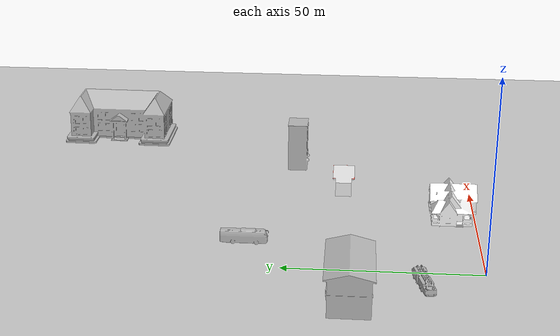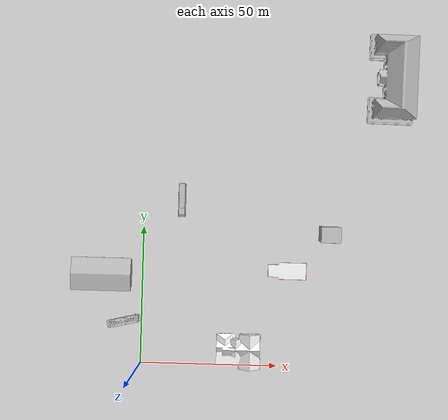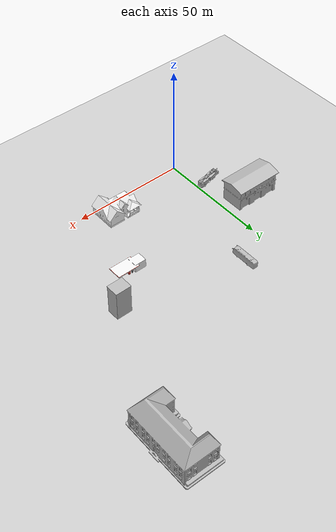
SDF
<sdf version="1.7">
 <world name="default">
  <light name="sun" type="directional">
   <pose>0 0 10 0 -0 0</pose>
   <diffuse>0.8 0.8 0.8 1</diffuse>
   <specular>0.2 0.2 0.2 1</specular>
   <attenuation>
    <range>1000</range>
    <constant>0.9</constant>
    <linear>0.01</linear>
    <quadratic>0.001</quadratic>
   </attenuation>
   <direction>-0.5 0.1 -0.9</direction>
   <spot><inner_angle>0</inner_angle><outer_angle>0</outer_angle><falloff>0</falloff></spot>
  </light>
  <model name="ground_plane">
   <static>1</static>
   <link name="link">
    <collision name="collision">
     <geometry><plane><normal>0 0 1</normal><size>500 500</size></plane></geometry>
     <surface>
      <contact><collide_bitmask>65535</collide_bitmask></contact>
      <friction><ode><mu>100</mu><mu2>50</mu2></ode></friction>
     </surface>
    </collision>
    <visual name="visual">
     <cast_shadows>0</cast_shadows>
     <geometry><plane><normal>0 0 1</normal><size>500 500</size></plane></geometry>
     <material>
      <script><uri>file://media/materials/scripts/gazebo.material</uri><name>Gazebo/Grey</name></script>
     </material>
    </visual>
   </link>
  </model>
  <gravity>0 0 -9.8</gravity>
  <magnetic_field>6e-06 2.3e-05 -4.2e-05</magnetic_field>
  <atmosphere type="adiabatic"/>
  <physics type="ode">
   <max_step_size>0.001</max_step_size>
   <real_time_factor>1</real_time_factor>
   <real_time_update_rate>1000</real_time_update_rate>
  </physics>
  <scene><ambient>0.4 0.4 0.4 1</ambient><background>0.7 0.7 0.7 1</background><shadows>1</shadows></scene>
  <spherical_coordinates>
   <surface_model>EARTH_WGS84</surface_model>
   <latitude_deg>0</latitude_deg>
   <longitude_deg>0</longitude_deg>
   <elevation>0</elevation>
   <heading_deg>0</heading_deg>
  </spherical_coordinates>
  <model name="fire_truck">
   <static>1</static>
   <link name="link">
    <collision name="collision">
     <geometry>
      <mesh><scale>0.1 0.1 0.1</scale><uri>model://fire_truck/meshes/fire_truck.obj</uri></mesh>
     </geometry>
    </collision>
    <visual name="visual">
     <geometry>
      <mesh><scale>0.1 0.1 0.1</scale><uri>model://fire_truck/meshes/fire_truck.obj</uri></mesh>
     </geometry>
    </visual>
   </link>
   <pose>-6.16311 15.2931 0 0 0 -1.34051</pose>
  </model>
  <model name="House 1">
   <static>1</static>
   <link name="link">
    <collision name="collision">
     <geometry><mesh><uri>model://house_1/meshes/house_1.dae</uri><scale>1.5 1.5 1.5</scale></mesh></geometry>
    </collision>
    <visual name="visual">
     <geometry><mesh><uri>model://house_1/meshes/house_1.dae</uri><scale>1.5 1.5 1.5</scale></mesh></geometry>
     <material>
      <script>
       <uri>model://house_1/materials/scripts</uri>
       <uri>model://house_1/materials/textures</uri>
       <name>House_1/Diffuse</name>
      </script>
      <shader type="normal_map_tangent_space"><normal_map>House_1_Normal.png</normal_map></shader>
     </material>
    </visual>
   </link>
   <pose>36.0516 5.96955 0 0 -0 0</pose>
  </model>
  <model name="school">
   <static>1</static>
   <link name="link">
    <collision name="collision">
     <geometry><mesh><uri>model://school/meshes/school.dae</uri></mesh></geometry>
    </collision>
    <visual name="visual"><geometry><mesh><uri>model://school/meshes/school.dae</uri></mesh></geometry></visual>
   </link>
   <pose>92.1629 106.486 0 0 0 -1.58531</pose>
  </model>
  <model name="bus">
   <static>1</static>
   <link name="link">
    <collision name="collision">
     <geometry><mesh><scale>0.01 0.01 0.01</scale><uri>model://bus/meshes/bus.obj</uri></mesh></geometry>
    </collision>
    <visual name="visual">
     <geometry><mesh><scale>0.01 0.01 0.01</scale><uri>model://bus/meshes/bus.obj</uri></mesh></geometry>
    </visual>
   </link>
   <pose>13.863 60.111 0 0 -0 0</pose>
  </model>
  <model name="law_office">
   <static>1</static>
   <link name="link">
    <collision name="collision">
     <pose>0 0 6.96244 0 -0 0</pose>
     <geometry><box><size>6.84401 5.43165 13.9249</size></box></geometry>
    </collision>
    <visual name="visual">
     <geometry><mesh><uri>model://law_office/meshes/law_office.dae</uri></mesh></geometry>
    </visual>
   </link>
   <pose>67.8145 49.1913 0 0 -0 0</pose>
  </model>
  <model name="Gas Station">
   <static>1</static>
   <link name="link">
    <collision name="collision">
     <geometry><mesh><uri>model://gas_station/meshes/gas_station.dae</uri></mesh></geometry>
    </collision>
    <visual name="visual">
     <geometry><mesh><uri>model://gas_station/meshes/gas_station.dae</uri></mesh></geometry>
     <material>
      <script>
       <uri>model://gas_station/materials/scripts</uri>
       <uri>model://gas_station/materials/textures</uri>
       <name>GasStation/Diffuse</name>
      </script>
      <shader type="normal_map_tangent_space"><normal_map>GasStation_Normal.png</normal_map></shader>
     </material>
    </visual>
   </link>
   <pose>52.3726 35.303 0 0 -0 0</pose>
  </model>
  <model name="fire_station">
   <static>1</static>
   <link name="link">
    <collision name="main">
     <pose>0 -0.135 5 0 -0 0</pose>
     <geometry><box><size>19.98 9.68 10</size></box></geometry>
    </collision>
    <collision name="front_top">
     <pose>0 4.957 7 0 -0 0</pose>
     <geometry><box><size>20 0.515 6</size></box></geometry>
    </collision>
    <collision name="column_0">
     <pose>9.333 4.957 2 0 -0 0</pose>
     <geometry><box><size>1.315 0.515 4</size></box></geometry>
    </collision>
    <collision name="column_1">
     <pose>3.33 4.957 2 0 -0 0</pose>
     <geometry><box><size>2.63 0.515 4</size></box></geometry>
    </collision>
    <collision name="column_2">
     <pose>-3.33 4.957 2 0 -0 0</pose>
     <geometry><box><size>2.63 0.515 4</size></box></geometry>
    </collision>
    <collision name="column_3">
     <pose>-9.333 4.957 2 0 -0 0</pose>
     <geometry><box><size>1.315 0.515 4</size></box></geometry>
    </collision>
    <collision name="roof_back">
     <pose>0 -2.742 10.467 0.25 -0 0</pose>
     <geometry><box><size>21.47 6.12 0.28</size></box></geometry>
    </collision>
    <collision name="roof_front">
     <pose>0 3.12 10.467 -0.25 0 0</pose>
     <geometry><box><size>21.47 6.12 0.28</size></box></geometry>
    </collision>
    <collision name="roof_base">
     <pose>0 0.188 9.705 0 -0 0</pose>
     <geometry><box><size>21.47 11.86 0.28</size></box></geometry>
    </collision>
    <collision name="roof_filling_0">
     <pose>0 0.188 9.985 0 -0 0</pose>
     <geometry><box><size>21.47 9.53 0.28</size></box></geometry>
    </collision>
    <collision name="roof_filling_1">
     <pose>0 0.188 10.14 0 -0 0</pose>
     <geometry><box><size>21.47 8.41 0.28</size></box></geometry>
    </collision>
    <collision name="roof_filling_2">
     <pose>0 0.188 10.42 0 -0 0</pose>
     <geometry><box><size>21.47 6.25 0.28</size></box></geometry>
    </collision>
    <collision name="roof_filling_3">
     <pose>0 0.188 10.7 0 -0 0</pose>
     <geometry><box><size>21.47 4.05 0.28</size></box></geometry>
    </collision>
    <collision name="roof_filling_4">
     <pose>0 0.188 10.98 0 -0 0</pose>
     <geometry><box><size>21.47 1.83 0.28</size></box></geometry>
    </collision>
    <visual name="visual">
     <geometry><mesh><uri>model://fire_station/meshes/fire_station.dae</uri></mesh></geometry>
    </visual>
   </link>
   <pose>-14.0077 32.7252 0 0 -0 0</pose>
  </model>
 </world>
</sdf>
